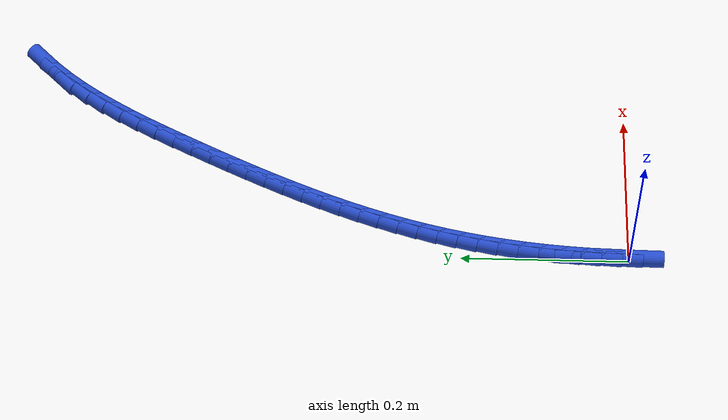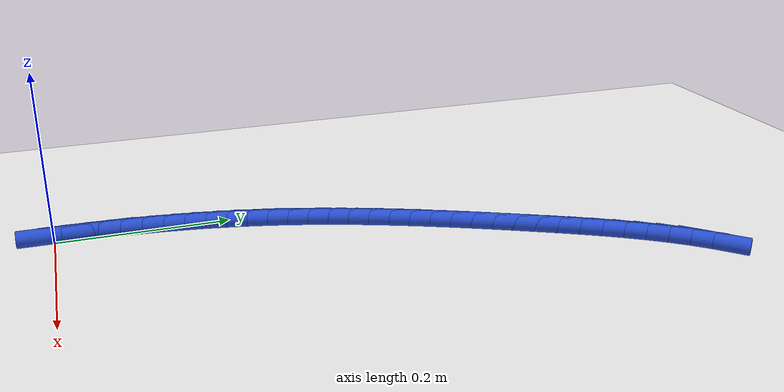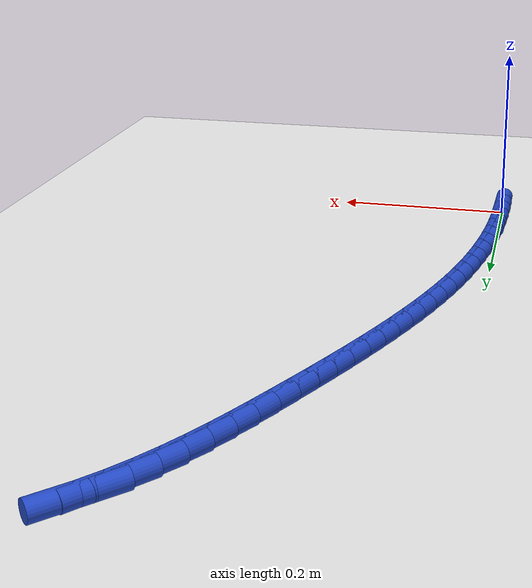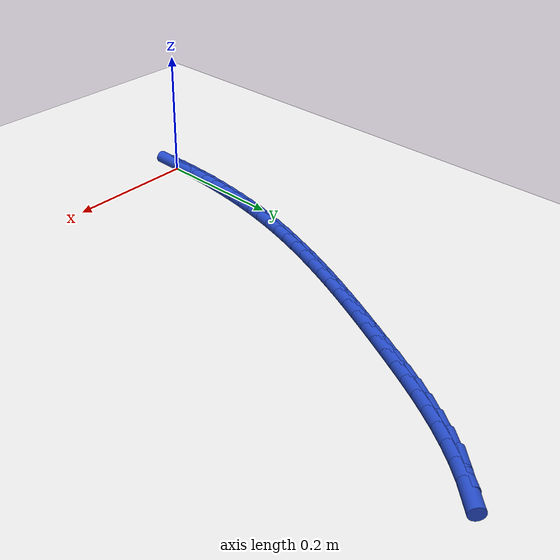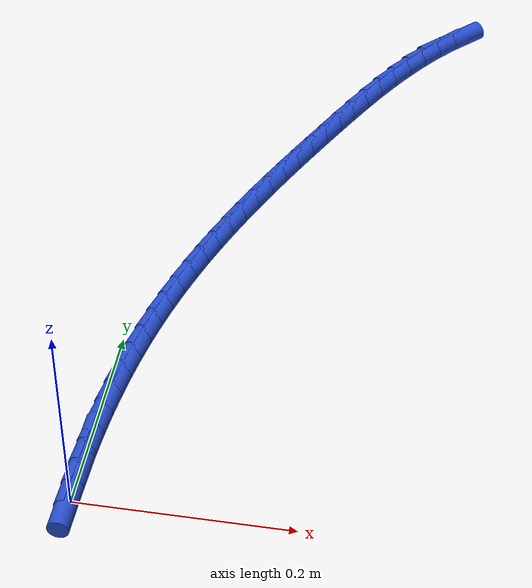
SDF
<sdf version="1.6">
 <world name="default">
  <model name="ground_plane">
   <static>1</static>
   <link name="link">
    <collision name="collision">
     <geometry><plane><normal>0 0 1</normal><size>100 100</size></plane></geometry>
     <surface><friction><ode><mu>100</mu><mu2>50</mu2></ode></friction></surface>
    </collision>
    <visual name="visual">
     <cast_shadows>0</cast_shadows>
     <geometry><plane><normal>0 0 1</normal><size>100 100</size></plane></geometry>
     <material>
      <script><uri>file://media/materials/scripts/gazebo.material</uri><name>Gazebo/WhiteGlow</name></script>
     </material>
    </visual>
   </link>
  </model>
  <model name="line">
   <link name="link_1">
    <pose>0.0003812467061995517 0.024607950575049647 0.01 0 1.57 1.532972883875322</pose>
    <collision name="collision">
     <geometry><cylinder><radius>0.01</radius><length>0.08</length></cylinder></geometry>
    </collision>
    <visual name="visual">
     <material>
      <script><name>Gazebo/Blue</name><uri>file://media/materials/scripts/gazebo.material</uri></script>
     </material>
     <geometry><cylinder><radius>0.01</radius><length>0.08</length></cylinder></geometry>
    </visual>
   </link>
   <link name="link_2">
    <pose>0.0013112480991377127 0.04918418658742195 0.01 0 1.57 1.5101342639521196</pose>
    <collision name="collision">
     <geometry><cylinder><radius>0.01</radius><length>0.08</length></cylinder></geometry>
    </collision>
    <visual name="visual">
     <material>
      <script><name>Gazebo/Blue</name><uri>file://media/materials/scripts/gazebo.material</uri></script>
     </material>
     <geometry><cylinder><radius>0.01</radius><length>0.08</length></cylinder></geometry>
    </visual>
   </link>
   <link name="link_3">
    <pose>0.0028006009073328216 0.07370569817742555 0.01 0 1.57 1.4867483651164621</pose>
    <collision name="collision">
     <geometry><cylinder><radius>0.01</radius><length>0.08</length></cylinder></geometry>
    </collision>
    <visual name="visual">
     <material>
      <script><name>Gazebo/Blue</name><uri>file://media/materials/scripts/gazebo.material</uri></script>
     </material>
     <geometry><cylinder><radius>0.01</radius><length>0.08</length></cylinder></geometry>
    </visual>
   </link>
   <link name="link_4">
    <pose>0.004859901859303199 0.09814947548536873 0.01 0 1.57 1.4627748649739634</pose>
    <collision name="collision">
     <geometry><cylinder><radius>0.01</radius><length>0.08</length></cylinder></geometry>
    </collision>
    <visual name="visual">
     <material>
      <script><name>Gazebo/Blue</name><uri>file://media/materials/scripts/gazebo.material</uri></script>
     </material>
     <geometry><cylinder><radius>0.01</radius><length>0.08</length></cylinder></geometry>
    </visual>
   </link>
   <link name="link_5">
    <pose>0.007499747683567175 0.12249250865156011 0.01 0 1.57 1.4381737925669953</pose>
    <collision name="collision">
     <geometry><cylinder><radius>0.01</radius><length>0.08</length></cylinder></geometry>
    </collision>
    <visual name="visual">
     <material>
      <script><name>Gazebo/Blue</name><uri>file://media/materials/scripts/gazebo.material</uri></script>
     </material>
     <geometry><cylinder><radius>0.01</radius><length>0.08</length></cylinder></geometry>
    </visual>
   </link>
   <link name="link_6">
    <pose>0.010730735108643075 0.14671178781630811 0.01 0 1.57 1.412905744207191</pose>
    <collision name="collision">
     <geometry><cylinder><radius>0.01</radius><length>0.08</length></cylinder></geometry>
    </collision>
    <visual name="visual">
     <material>
      <script><name>Gazebo/Blue</name><uri>file://media/materials/scripts/gazebo.material</uri></script>
     </material>
     <geometry><cylinder><radius>0.01</radius><length>0.08</length></cylinder></geometry>
    </visual>
   </link>
   <link name="link_7">
    <pose>0.014563460863049223 0.17078430311992115 0.01 0 1.57 1.386932162574718</pose>
    <collision name="collision">
     <geometry><cylinder><radius>0.01</radius><length>0.08</length></cylinder></geometry>
    </collision>
    <visual name="visual">
     <material>
      <script><name>Gazebo/Blue</name><uri>file://media/materials/scripts/gazebo.material</uri></script>
     </material>
     <geometry><cylinder><radius>0.01</radius><length>0.08</length></cylinder></geometry>
    </visual>
   </link>
   <link name="link_8">
    <pose>0.019008521675303938 0.19468704470270767 0.01 0 1.57 1.3602156854906027</pose>
    <collision name="collision">
     <geometry><cylinder><radius>0.01</radius><length>0.08</length></cylinder></geometry>
    </collision>
    <visual name="visual">
     <material>
      <script><name>Gazebo/Blue</name><uri>file://media/materials/scripts/gazebo.material</uri></script>
     </material>
     <geometry><cylinder><radius>0.01</radius><length>0.08</length></cylinder></geometry>
    </visual>
   </link>
   <link name="link_9">
    <pose>0.02407651427392555 0.21839700270497614 0.01 0 1.57 1.3327609385936665</pose>
    <collision name="collision">
     <geometry><cylinder><radius>0.01</radius><length>0.08</length></cylinder></geometry>
    </collision>
    <visual name="visual">
     <material>
      <script><name>Gazebo/Blue</name><uri>file://media/materials/scripts/gazebo.material</uri></script>
     </material>
     <geometry><cylinder><radius>0.01</radius><length>0.08</length></cylinder></geometry>
    </visual>
   </link>
   <link name="link_10">
    <pose>0.02977723821603783 0.24189202076844585 0.01 0 1.57 1.3055738209807342</pose>
    <collision name="collision">
     <geometry><cylinder><radius>0.01</radius><length>0.08</length></cylinder></geometry>
    </collision>
    <visual name="visual">
     <material>
      <script><name>Gazebo/Blue</name><uri>file://media/materials/scripts/gazebo.material</uri></script>
     </material>
     <geometry><cylinder><radius>0.01</radius><length>0.08</length></cylinder></geometry>
    </visual>
   </link>
   <link name="link_11">
    <pose>0.03610042501301905 0.2651714286361586 0.01 0 1.57 1.2797929943238218</pose>
    <collision name="collision">
     <geometry><cylinder><radius>0.01</radius><length>0.08</length></cylinder></geometry>
    </collision>
    <visual name="visual">
     <material>
      <script><name>Gazebo/Blue</name><uri>file://media/materials/scripts/gazebo.material</uri></script>
     </material>
     <geometry><cylinder><radius>0.01</radius><length>0.08</length></cylinder></geometry>
    </visual>
   </link>
   <link name="link_12">
    <pose>0.04301472529116708 0.2882571265614364 0.01 0 1.57 1.255550255592976</pose>
    <collision name="collision">
     <geometry><cylinder><radius>0.01</radius><length>0.08</length></cylinder></geometry>
    </collision>
    <visual name="visual">
     <material>
      <script><name>Gazebo/Blue</name><uri>file://media/materials/scripts/gazebo.material</uri></script>
     </material>
     <geometry><cylinder><radius>0.01</radius><length>0.08</length></cylinder></geometry>
    </visual>
   </link>
   <link name="link_13">
    <pose>0.050487789783555295 0.3111720853456462 0.01 0 1.57 1.2329104635235668</pose>
    <collision name="collision">
     <geometry><cylinder><radius>0.01</radius><length>0.08</length></cylinder></geometry>
    </collision>
    <visual name="visual">
     <material>
      <script><name>Gazebo/Blue</name><uri>file://media/materials/scripts/gazebo.material</uri></script>
     </material>
     <geometry><cylinder><radius>0.01</radius><length>0.08</length></cylinder></geometry>
    </visual>
   </link>
   <link name="link_14">
    <pose>0.05848726922325713 0.333939275790155 0.01 0 1.57 1.2119231385453824</pose>
    <collision name="collision">
     <geometry><cylinder><radius>0.01</radius><length>0.08</length></cylinder></geometry>
    </collision>
    <visual name="visual">
     <material>
      <script><name>Gazebo/Blue</name><uri>file://media/materials/scripts/gazebo.material</uri></script>
     </material>
     <geometry><cylinder><radius>0.01</radius><length>0.08</length></cylinder></geometry>
    </visual>
   </link>
   <link name="link_15">
    <pose>0.06698081434334588 0.3565816686963294 0.01 0 1.57 1.192623739514269</pose>
    <collision name="collision">
     <geometry><cylinder><radius>0.01</radius><length>0.08</length></cylinder></geometry>
    </collision>
    <visual name="visual">
     <material>
      <script><name>Gazebo/Blue</name><uri>file://media/materials/scripts/gazebo.material</uri></script>
     </material>
     <geometry><cylinder><radius>0.01</radius><length>0.08</length></cylinder></geometry>
    </visual>
   </link>
   <link name="link_16">
    <pose>0.07593607587689495 0.37912223486553637 0.01 0 1.57 1.1750351339731673</pose>
    <collision name="collision">
     <geometry><cylinder><radius>0.01</radius><length>0.08</length></cylinder></geometry>
    </collision>
    <visual name="visual">
     <material>
      <script><name>Gazebo/Blue</name><uri>file://media/materials/scripts/gazebo.material</uri></script>
     </material>
     <geometry><cylinder><radius>0.01</radius><length>0.08</length></cylinder></geometry>
    </visual>
   </link>
   <link name="link_17">
    <pose>0.08532070455697777 0.40158394509914286 0.01 0 1.57 1.1591691599053073</pose>
    <collision name="collision">
     <geometry><cylinder><radius>0.01</radius><length>0.08</length></cylinder></geometry>
    </collision>
    <visual name="visual">
     <material>
      <script><name>Gazebo/Blue</name><uri>file://media/materials/scripts/gazebo.material</uri></script>
     </material>
     <geometry><cylinder><radius>0.01</radius><length>0.08</length></cylinder></geometry>
    </visual>
   </link>
   <link name="link_18">
    <pose>0.09510235111666764 0.4239897701985157 0.01 0 1.57 1.1450281935200248</pose>
    <collision name="collision">
     <geometry><cylinder><radius>0.01</radius><length>0.08</length></cylinder></geometry>
    </collision>
    <visual name="visual">
     <material>
      <script><name>Gazebo/Blue</name><uri>file://media/materials/scripts/gazebo.material</uri></script>
     </material>
     <geometry><cylinder><radius>0.01</radius><length>0.08</length></cylinder></geometry>
    </visual>
   </link>
   <link name="link_19">
    <pose>0.10524866628903799 0.44636268096502163 0.01 0 1.57 1.132606655979784</pose>
    <collision name="collision">
     <geometry><cylinder><radius>0.01</radius><length>0.08</length></cylinder></geometry>
    </collision>
    <visual name="visual">
     <material>
      <script><name>Gazebo/Blue</name><uri>file://media/materials/scripts/gazebo.material</uri></script>
     </material>
     <geometry><cylinder><radius>0.01</radius><length>0.08</length></cylinder></geometry>
    </visual>
   </link>
   <link name="link_20">
    <pose>0.11572730080716219 0.4687256482000277 0.01 0 1.57 1.1218924100314067</pose>
    <collision name="collision">
     <geometry><cylinder><radius>0.01</radius><length>0.08</length></cylinder></geometry>
    </collision>
    <visual name="visual">
     <material>
      <script><name>Gazebo/Blue</name><uri>file://media/materials/scripts/gazebo.material</uri></script>
     </material>
     <geometry><cylinder><radius>0.01</radius><length>0.08</length></cylinder></geometry>
    </visual>
   </link>
   <link name="link_21">
    <pose>0.1265059054041136 0.49110164270490064 0.01 0 1.57 1.112868013838958</pose>
    <collision name="collision">
     <geometry><cylinder><radius>0.01</radius><length>0.08</length></cylinder></geometry>
    </collision>
    <visual name="visual">
     <material>
      <script><name>Gazebo/Blue</name><uri>file://media/materials/scripts/gazebo.material</uri></script>
     </material>
     <geometry><cylinder><radius>0.01</radius><length>0.08</length></cylinder></geometry>
    </visual>
   </link>
   <link name="link_22">
    <pose>0.13755213081296566 0.5135136352810075 0.01 0 1.57 1.10551181315561</pose>
    <collision name="collision">
     <geometry><cylinder><radius>0.01</radius><length>0.08</length></cylinder></geometry>
    </collision>
    <visual name="visual">
     <material>
      <script><name>Gazebo/Blue</name><uri>file://media/materials/scripts/gazebo.material</uri></script>
     </material>
     <geometry><cylinder><radius>0.01</radius><length>0.08</length></cylinder></geometry>
    </visual>
   </link>
   <link name="link_23">
    <pose>0.14883362776679163 0.5359845967297147 0.01 0 1.57 1.0986149254631403</pose>
    <collision name="collision">
     <geometry><cylinder><radius>0.01</radius><length>0.08</length></cylinder></geometry>
    </collision>
    <visual name="visual">
     <material>
      <script><name>Gazebo/Blue</name><uri>file://media/materials/scripts/gazebo.material</uri></script>
     </material>
     <geometry><cylinder><radius>0.01</radius><length>0.08</length></cylinder></geometry>
    </visual>
   </link>
   <link name="link_24">
    <pose>0.16033753742915416 0.5585097818580833 0.01 0 1.57 1.0865495148317468</pose>
    <collision name="collision">
     <geometry><cylinder><radius>0.01</radius><length>0.08</length></cylinder></geometry>
    </collision>
    <visual name="visual">
     <material>
      <script><name>Gazebo/Blue</name><uri>file://media/materials/scripts/gazebo.material</uri></script>
     </material>
     <geometry><cylinder><radius>0.01</radius><length>0.08</length></cylinder></geometry>
    </visual>
   </link>
   <link name="link_25">
    <pose>0.17214326349090753 0.5809532453089418 0.01 0 1.57 1.0675600212944543</pose>
    <collision name="collision">
     <geometry><cylinder><radius>0.01</radius><length>0.08</length></cylinder></geometry>
    </collision>
    <visual name="visual">
     <material>
      <script><name>Gazebo/Blue</name><uri>file://media/materials/scripts/gazebo.material</uri></script>
     </material>
     <geometry><cylinder><radius>0.01</radius><length>0.08</length></cylinder></geometry>
    </visual>
   </link>
   <link name="link_26">
    <pose>0.18435748294254106 0.6031402582504383 0.01 0 1.57 1.0414027347263328</pose>
    <collision name="collision">
     <geometry><cylinder><radius>0.01</radius><length>0.08</length></cylinder></geometry>
    </collision>
    <visual name="visual">
     <material>
      <script><name>Gazebo/Blue</name><uri>file://media/materials/scripts/gazebo.material</uri></script>
     </material>
     <geometry><cylinder><radius>0.01</radius><length>0.08</length></cylinder></geometry>
    </visual>
   </link>
   <link name="link_27">
    <pose>0.19708687685222578 0.6248960860521315 0.01 0 1.57 1.0077027396976996</pose>
    <collision name="collision">
     <geometry><cylinder><radius>0.01</radius><length>0.08</length></cylinder></geometry>
    </collision>
    <visual name="visual">
     <material>
      <script><name>Gazebo/Blue</name><uri>file://media/materials/scripts/gazebo.material</uri></script>
     </material>
     <geometry><cylinder><radius>0.01</radius><length>0.08</length></cylinder></geometry>
    </visual>
   </link>
   <link name="link_28">
    <pose>0.2104381262881325 0.6460459940835802 0.01 0 1.57 0.965982316597031</pose>
    <collision name="collision">
     <geometry><cylinder><radius>0.01</radius><length>0.08</length></cylinder></geometry>
    </collision>
    <visual name="visual">
     <material>
      <script><name>Gazebo/Blue</name><uri>file://media/materials/scripts/gazebo.material</uri></script>
     </material>
     <geometry><cylinder><radius>0.01</radius><length>0.08</length></cylinder></geometry>
    </visual>
   </link>
   <link name="link_29">
    <pose>0.22451791231843213 0.6664152477143426 0.01 0 1.57 0.9157073745038969</pose>
    <collision name="collision">
     <geometry><cylinder><radius>0.01</radius><length>0.08</length></cylinder></geometry>
    </collision>
    <visual name="visual">
     <material>
      <script><name>Gazebo/Blue</name><uri>file://media/materials/scripts/gazebo.material</uri></script>
     </material>
     <geometry><cylinder><radius>0.01</radius><length>0.08</length></cylinder></geometry>
    </visual>
   </link>
   <link name="link_30">
    <pose>0.2394329160112957 0.6858291123139778 0.01 0 1.57 0.8563623609497848</pose>
    <collision name="collision">
     <geometry><cylinder><radius>0.01</radius><length>0.08</length></cylinder></geometry>
    </collision>
    <visual name="visual">
     <material>
      <script><name>Gazebo/Blue</name><uri>file://media/materials/scripts/gazebo.material</uri></script>
     </material>
     <geometry><cylinder><radius>0.01</radius><length>0.08</length></cylinder></geometry>
    </visual>
   </link>
   <link name="link_31">
    <pose>0.2552898184348942 0.7041128532520444 0.01 0 1.57 0.7875643633255981</pose>
    <collision name="collision">
     <geometry><cylinder><radius>0.01</radius><length>0.08</length></cylinder></geometry>
    </collision>
    <visual name="visual">
     <material>
      <script><name>Gazebo/Blue</name><uri>file://media/materials/scripts/gazebo.material</uri></script>
     </material>
     <geometry><cylinder><radius>0.01</radius><length>0.08</length></cylinder></geometry>
    </visual>
   </link>
   <link name="link_270">
    <pose>1.0842021724855044e-17 1.5959455978986625e-16 0.01 0 1.57 1.5555466847977588</pose>
    <collision name="collision">
     <geometry><cylinder><radius>0.01</radius><length>0.08</length></cylinder></geometry>
    </collision>
    <visual name="visual">
     <material>
      <script><name>Gazebo/Blue</name><uri>file://media/materials/scripts/gazebo.material</uri></script>
     </material>
     <geometry><cylinder><radius>0.01</radius><length>0.08</length></cylinder></geometry>
    </visual>
   </link>
   <link name="link_271">
    <pose>0.00037527758216144083 0.02460703610719714 0.01 0 1.57 1.5346613300648766</pose>
    <collision name="collision">
     <geometry><cylinder><radius>0.01</radius><length>0.08</length></cylinder></geometry>
    </collision>
    <visual name="visual">
     <material>
      <script><name>Gazebo/Blue</name><uri>file://media/materials/scripts/gazebo.material</uri></script>
     </material>
     <geometry><cylinder><radius>0.01</radius><length>0.08</length></cylinder></geometry>
    </visual>
   </link>
   <link name="link_272">
    <pose>0.001263495106832782 0.049176870844598826 0.01 0 1.57 1.545109104851595</pose>
    <collision name="collision">
     <geometry><cylinder><radius>0.01</radius><length>0.08</length></cylinder></geometry>
    </collision>
    <visual name="visual">
     <material>
      <script><name>Gazebo/Blue</name><uri>file://media/materials/scripts/gazebo.material</uri></script>
     </material>
     <geometry><cylinder><radius>0.01</radius><length>0.08</length></cylinder></geometry>
    </visual>
   </link>
  </model>
 </world>
</sdf>
